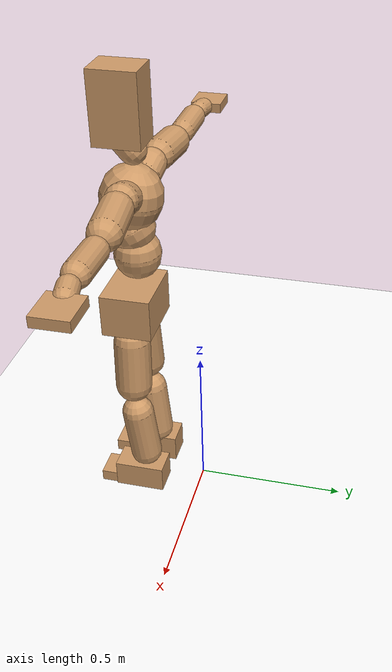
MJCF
<mujoco model="humanoid">
  <option integrator="implicitfast" />

  <visual>
    <global offwidth="1280" offheight="960" />
    <headlight active="1" ambient="0.34 0.34 0.34" diffuse="0.5 0.5 0.5" />
  </visual>

  <default>
    <joint damping="2" stiffness="2" armature="0.01" limited="true" solimplimit="0 .99 .01" />
    <geom condim="1" friction="0.7 0.005 0.0001" solimp=".99 .99 .003" solref="0.015 1" margin="0.001" rgba="0.8 0.6 .4 1" />
    <default class="smplcontact">
      <geom condim="3" friction="1. 0.005 0.0001" solref="0.015 1" solimp="0.98 0.98 0.001" priority="1" />
    </default>
    <default class="stiff_medium">
      <joint stiffness="10" />
    </default>
    <default class="stiff_medium_higher">
      <joint stiffness="50" />
    </default>
    <default class="stiff_high">
      <joint stiffness="100" />
    </default>
  </default>

  <asset>
    <texture type="skybox" builtin="gradient" rgb1="0.99 0.99 0.99" rgb2="0.608 0.828 0.892" width="100" />
    <texture builtin="flat" height="1278" mark="cross" markrgb="1 1 1" name="texgeom" random="0.01" rgb1="0.8 0.6 0.4" rgb2="0.8 0.6 0.4" type="cube" width="127" />
    <texture name="texplane" type="2d" builtin="checker" markrgb="1 1 1" rgb1="0.756 0.772 0.76" rgb2="0.6 0.6 0.6" width="100" height="100" />
    <material name="MatPlane" reflectance="0.5" texture="texplane" texrepeat="1 1" texuniform="true" />
    <material name="geom" texture="texgeom" texuniform="true" />
  </asset>

  <worldbody>
    <light name="tracking_light" pos="0 0 7" dir="0 0 -1" directional="true" cutoff="100" exponent="1" diffuse="1 1 1" specular="0.1 0.1 0.1" mode="trackcom" />
    <camera name="back" pos="0 3 2.4" xyaxes="-1 0 0 0 -1 2" mode="trackcom" />
    <camera name="side" pos="-3 0 2.4" xyaxes="0 -1 0 1 0 2" mode="trackcom" />
    <camera name="front_side" pos="-2.8 -2.8 0.8" xyaxes="0.5 -0.5 0 0.1 0.1 1" mode="trackcom" />
    <geom condim="3" name="floor" pos="0 0 0" rgba="1 1 1 1" size="100 100 .2" type="plane" material="MatPlane" />
    <body name="Pelvis" pos="-0.0018 -0.2233 0.714475" euler="90 0 0">
      <site name="Pelvis" size="0.01" />
      <freejoint name="Pelvis" />
      <geom type="box" pos="-0.0000 -0.0121 -0.0055" size="0.1069 0.0722 0.083" quat="1.0000 0.0000 0.0000 0.0000" density="3165.830099" name="Pelvis" />
      <body name="L_Hip" pos="0.052125 -0.06855 -0.0051">
        <joint name="L_Hip_x" type="hinge" pos="0 0 0" axis="1 0 0" stiffness="6.246094795918367" range="-160.0 22.92" class="stiff_medium" damping="8.291075045961078" armature="0.004891370984683405"/>
        <joint name="L_Hip_y" type="hinge" pos="0 0 0" axis="0 1 0" stiffness="6.283432346938776" range="-70.0 70.0" class="stiff_medium" damping="6.622206330553065" armature="0.006979245460609143"/>
        <joint name="L_Hip_z" type="hinge" pos="0 0 0" axis="0 0 1" stiffness="6.280236020408163" range="-28.65 90.0" class="stiff_medium" damping="5.540637852842338" armature="0.004888139190404853"/>
        <geom type="capsule" density="2040.816327" fromto="0.005175 -0.05625 -0.000675 0.02055 -0.22515 -0.0027" size="0.0615" name="L_Hip" />
        <body name="L_Knee" pos="0.025725 -0.2814 -0.003375">
          <joint name="L_Knee_x" type="hinge" pos="0 0 0" axis="1 0 0" range="-5.16 171.89" damping="4.62915338976834" armature="0.005182973512521492" stiffness="1.292034693877551"/>
          <joint name="L_Knee_y" type="hinge" pos="0 0 0" axis="0 1 0" range="-4.58 6.88" damping="5.469884734588186" armature="0.007381715461698131" stiffness="1.2666279591836735"/>
          <joint name="L_Knee_z" type="hinge" pos="0 0 0" axis="0 0 1" range="-6.88 4.58" damping="4.641672627872137" armature="0.005166231774225993" stiffness="1.3032422448979593"/>
          <geom type="capsule" density="1234.567901" fromto="-0.002025 -0.0597 -0.006525 -0.008175 -0.2388 -0.02625" size="0.0541" name="L_Knee" />
          <body name="L_Ankle" pos="-0.0102 -0.2985 -0.032775">
            <joint name="L_Ankle_x" type="hinge" pos="0 0 0" axis="1 0 0" range="-45.84 45.84" class="stiff_medium" damping="4.385268345779563" armature="0.007122436468331935" stiffness="7.5"/>
            <joint name="L_Ankle_y" type="hinge" pos="0 0 0" axis="0 1 0" range="-74.48 22.92" class="stiff_medium" damping="2.209050591087885" armature="0.007229488168867752" stiffness="7.5"/>
            <joint name="L_Ankle_z" type="hinge" pos="0 0 0" axis="0 0 1" range="-4.58 4.58" class="stiff_medium" damping="4.627293284407388" armature="0.00793031227404508" stiffness="7.5"/>
            <geom type="box" pos="0.017475 -0.017925 0.01815" size="0.0483 0.0464 0.085" quat="1.0000 0.0000 0.0000 0.0000" density="449.071558" name="L_Ankle" class="smplcontact" />
            <body name="L_Toe" pos="0.0198 -0.04185 0.089475">
              <joint name="L_Toe_x" type="hinge" pos="0 0 0" axis="1 0 0" range="-91.67 22.92" armature="0.00833667788750312" damping="1.5814560905225716" stiffness="1.5"/>
              <joint name="L_Toe_y" type="hinge" pos="0 0 0" axis="0 1 0" range="-4.58 4.58" armature="0.008828055290798229" damping="1.6273956455759209" stiffness="1.5"/>
              <joint name="L_Toe_z" type="hinge" pos="0 0 0" axis="0 0 1" range="-4.58 4.58" armature="0.009821593951991853" damping="1.7165308577469722" stiffness="1.5"/>
              <geom type="box" pos="-0.00225 0.004125 0.0186" size="0.0478 0.02 0.0496" quat="1.0000 0.0000 0.0000 0.0000" density="423.206892" name="L_Toe" class="smplcontact" />
            </body>
          </body>
        </body>
      </body>
      <body name="R_Hip" pos="-0.050775 -0.067875 -0.003225">
        <joint name="R_Hip_x" type="hinge" pos="0 0 0" axis="1 0 0" stiffness="6.246094795918367" range="-160.0 22.92" class="stiff_medium" damping="8.291075045961078" armature="0.004891370984683405"/>
        <joint name="R_Hip_y" type="hinge" pos="0 0 0" axis="0 1 0" stiffness="6.283432346938776" range="-70.0 70.0" class="stiff_medium" damping="6.622206330553065" armature="0.006979245460609143"/>
        <joint name="R_Hip_z" type="hinge" pos="0 0 0" axis="0 0 1" stiffness="6.280236020408163" range="-90.0 28.65" class="stiff_medium" damping="5.540637852842338" armature="0.004888139190404853"/>
        <geom type="capsule" density="2040.816327" fromto="-0.005775 -0.057375 -0.00135 -0.02295 -0.229575 -0.005325" size="0.0606" name="R_Hip" />
        <body name="R_Knee" pos="-0.028725 -0.28695 -0.006675">
          <joint name="R_Knee_x" type="hinge" pos="0 0 0" axis="1 0 0" range="-5.16 171.89" damping="4.62915338976834" armature="0.005182973512521492" stiffness="1.292034693877551"/>
          <joint name="R_Knee_y" type="hinge" pos="0 0 0" axis="0 1 0" range="-6.88 4.58" damping="5.469884734588186" armature="0.007381715461698131" stiffness="1.2666279591836735"/>
          <joint name="R_Knee_z" type="hinge" pos="0 0 0" axis="0 0 1" range="-4.58 6.88" damping="4.641672627872137" armature="0.005166231774225993" stiffness="1.3032422448979593"/>
          <geom type="capsule" density="1234.567901" fromto="0.0024 -0.059775 -0.006375 0.00945 -0.239025 -0.02535" size="0.0541" name="R_Knee" />
          <body name="R_Ankle" pos="0.01185 -0.2988 -0.031725">
            <joint name="R_Ankle_x" type="hinge" pos="0 0 0" axis="1 0 0" range="-45.84 45.84" class="stiff_medium" damping="4.385268345779563" armature="0.007122436468331935" stiffness="7.5"/>
            <joint name="R_Ankle_y" type="hinge" pos="0 0 0" axis="0 1 0" range="-22.92 74.48" class="stiff_medium" damping="2.209050591087885" armature="0.007229488168867752" stiffness="7.5"/>
            <joint name="R_Ankle_z" type="hinge" pos="0 0 0" axis="0 0 1" range="-4.58 4.58" class="stiff_medium" damping="4.627293284407388" armature="0.00793031227404508" stiffness="7.5"/>
            <geom type="box" pos="-0.0159 -0.01305 0.0192" size="0.0483 0.0478 0.0865" quat="1.0000 0.0000 0.0000 0.0000" density="434.700981" name="R_Ankle" class="smplcontact" />
            <body name="R_Toe" pos="-0.01905 -0.036075 0.092475">
              <joint name="R_Toe_x" type="hinge" pos="0 0 0" axis="1 0 0" range="-91.67 22.92" armature="0.00833667788750312" damping="1.5814560905225716" stiffness="1.5"/>
              <joint name="R_Toe_y" type="hinge" pos="0 0 0" axis="0 1 0" range="-4.58 4.58" armature="0.008828055290798229" damping="1.6273956455759209" stiffness="1.5"/>
              <joint name="R_Toe_z" type="hinge" pos="0 0 0" axis="0 0 1" range="-4.58 4.58" armature="0.009821593951991853" damping="1.7165308577469722" stiffness="1.5"/>
              <geom type="box" pos="0.00315 0.003375 0.017025" size="0.0479 0.0216 0.0493" quat="1.0000 0.0000 0.0000 0.0000" density="407.384095" name="R_Toe" class="smplcontact" />
            </body>
          </body>
        </body>
      </body>
      <body name="Torso" pos="-0.0025 0.109 -0.0267">
        <joint name="Torso_x" type="hinge" pos="0 0 0" axis="1 0 0" range="-25.78 57.3" class="stiff_medium" damping="14.37772512695071" armature="0.009518929822817204" stiffness="9.651831020408164"/>
        <joint name="Torso_y" type="hinge" pos="0 0 0" axis="0 1 0" range="-57.3 57.3" class="stiff_high" damping="17.047281200761137" armature="0.007489541703378379" stiffness="97.00519999999999"/>
        <joint name="Torso_z" type="hinge" pos="0 0 0" axis="0 0 1" range="-34.38 34.38" class="stiff_high" damping="18.565365135129568" armature="0.008825226346331873" stiffness="97.63851063829787"/>
        <geom type="capsule" density="2040.816327" fromto="0.0025 0.0608 0.0005 0.003 0.0743 0.0006" size="0.0769" name="Torso" />
        <body name="Spine" pos="0.0055 0.1352 0.0011">
          <joint name="Spine_x" type="hinge" pos="0 0 0" axis="1 0 0" stiffness="9.58583163265306" range="-25.78 57.3" class="stiff_medium" damping="14.269183612083733" armature="0.009440303089812757"/>
          <joint name="Spine_y" type="hinge" pos="0 0 0" axis="0 1 0" stiffness="9.576922244897958" range="-57.3 57.3" class="stiff_high" damping="6.767385718688831" armature="0.007471983870182018"/>
          <joint name="Spine_z" type="hinge" pos="0 0 0" axis="0 0 1" stiffness="19.01161469387755" range="-34.38 34.38" class="stiff_high" damping="10.689541255547073" armature="0.008347696197381859"/>
          <geom type="capsule" density="2040.816327" fromto="0.0007 0.0238 0.0114 0.0008 0.0291 0.014" size="0.0755" name="Spine" />
          <body name="Chest" pos="0.0015 0.0529 0.0254">
            <joint name="Chest_x" type="hinge" pos="0 0 0" axis="1 0 0" stiffness="9.387211020408163" range="-25.78 57.3" class="stiff_medium" damping="14.08799789886208" armature="0.009396788619791435"/>
            <joint name="Chest_y" type="hinge" pos="0 0 0" axis="0 1 0" stiffness="8.88616191489362" range="-57.3 57.3" class="stiff_high" damping="6.5161693940165115" armature="0.00746604382925993"/>
            <joint name="Chest_z" type="hinge" pos="0 0 0" axis="0 0 1" stiffness="18.95676244897959" range="-34.38 34.38" class="stiff_high" damping="10.53982249103985" armature="0.008138979020284567"/>
            <geom type="capsule" density="2040.816327" fromto="-0.0009 0.0682 -0.0173 -0.001 0.0833 -0.0212" size="0.1002" name="Chest" />
            <body name="Neck" pos="-0.0028 0.2139 -0.0429">
              <joint name="Neck_x" type="hinge" pos="0 0 0" axis="1 0 0" range="-28.65 57.3" class="stiff_medium_higher" damping="9.999999999999996" armature="0.009999999999999993" stiffness="50.0"/>
              <joint name="Neck_y" type="hinge" pos="0 0 0" axis="0 1 0" range="-40.11 40.11" class="stiff_medium_higher" damping="10.0" armature="0.01" stiffness="50.0"/>
              <joint name="Neck_z" type="hinge" pos="0 0 0" axis="0 0 1" range="-40.11 40.11" class="stiff_medium_higher" damping="9.999999999999986" armature="0.009999999999999974" stiffness="50.0"/>
              <geom type="capsule" density="1000" fromto="0.001 0.013 0.0103 0.0041 0.052 0.0411" size="0.0436" name="Neck" />
              <body name="Head" pos="0.0052 0.065 0.0513">
                <joint name="Head_x" type="hinge" pos="0 0 0" axis="1 0 0" range="-28.65 57.3" class="stiff_medium_higher" damping="1.9999999999999978" armature="0.009999999999999978" stiffness="50.0"/>
                <joint name="Head_y" type="hinge" pos="0 0 0" axis="0 1 0" range="-40.11 40.11" class="stiff_medium_higher" damping="2.0" armature="0.01" stiffness="50.0"/>
                <joint name="Head_z" type="hinge" pos="0 0 0" axis="0 0 1" range="-40.11 40.11" class="stiff_medium_higher" damping="1.9999999999999956" armature="0.009999999999999957" stiffness="50.0"/>
                <geom type="box" pos="-0.0042 0.0876 -0.0116" size="0.0606 0.1154 0.076" quat="1.0000 0.0000 0.0000 0.0000" density="1018.069894" name="Head" />
                <geom type="capsule" name="nose" size="0.02 0.01" pos="0 0.07 0.05" quat="1 0 0 0" mass="0" contype="0" conaffinity="0" />
              </body>
            </body>
            <body name="L_Thorax" pos="0.069935 0.108009 -0.0302637">
              <joint name="L_Thorax_x" type="hinge" pos="0 0 0" axis="1 0 0" range="-10.89 4.58" class="stiff_medium_higher" damping="16.503674429364345" armature="0.00823728971288075" stiffness="41.33205204081632"/>
              <joint name="L_Thorax_y" type="hinge" pos="0 0 0" axis="0 1 0" range="-28.65 17.19" class="stiff_medium_higher" damping="15.615380485833974" armature="0.007397181758642919" stiffness="41.2049"/>
              <joint name="L_Thorax_z" type="hinge" pos="0 0 0" axis="0 0 1" range="-31.51 40.11" class="stiff_medium_higher" damping="15.61484528881393" armature="0.0073964225804993" stiffness="41.206304591836734"/>
              <geom type="capsule" density="1000" fromto="0.0161525 0.00541375 -0.0015975 0.06461 0.021655 -0.00630125" size="0.0521" name="L_Thorax" />
              <body name="L_Shoulder" pos="0.0807625 0.0270687 -0.00789875">
                <joint name="L_Shoulder_x" type="hinge" pos="0 0 0" axis="1 0 0" range="-97.4 97.4" class="stiff_medium" damping="5.053222703168467" armature="0.008561219507331212" stiffness="8.28511887755102"/>
                <joint name="L_Shoulder_y" type="hinge" pos="0 0 0" axis="0 1 0" range="-108.86 80.21" class="stiff_medium" damping="4.696052433643627" armature="0.0074248281922430735" stiffness="8.25043724489796"/>
                <joint name="L_Shoulder_z" type="hinge" pos="0 0 0" axis="0 0 1" range="-97.4 85.94" class="stiff_medium" damping="4.696316861704075" armature="0.0074238227073570905" stiffness="8.252483979591837"/>
                <geom type="capsule" density="1000" fromto="0.0460612 -0.0023075 -0.00488125 0.184334 -0.0090525 -0.019525" size="0.0517" name="L_Shoulder" />
                <body name="L_Elbow" pos="0.230395 -0.01136 -0.0244062">
                  <joint name="L_Elbow_x" type="hinge" pos="0 0 0" axis="1 0 0" range="-17.19 4.58" damping="4.357905906305418" armature="0.00908959576069993" stiffness="1.6714797346938777"/>
                  <joint name="L_Elbow_y" type="hinge" pos="0 0 0" axis="0 1 0" range="-180.0 17.19" damping="3.9739600722787505" armature="0.007559999182253774" stiffness="1.6711492448979592"/>
                  <joint name="L_Elbow_z" type="hinge" pos="0 0 0" axis="0 0 1" range="-100.84 4.58" damping="3.9732408069423326" armature="0.007554721526974213" stiffness="1.671711387755102"/>
                  <geom type="capsule" density="1000" fromto="0.0441975 0.0015975 -0.0001775 0.176967 0.00639 -0.00079875" size="0.0405" name="L_Elbow" />
                  <body name="L_Wrist" pos="0.221165 0.0079875 -0.001065">
                    <joint name="L_Wrist_x" type="hinge" pos="0 0 0" axis="1 0 0" range="-180.0 22.92" armature="0.009268388983616014" damping="1.795344155935765" stiffness="1.738846224489796"/>
                    <joint name="L_Wrist_y" type="hinge" pos="0 0 0" axis="0 1 0" range="-17.19 17.19" armature="0.008039907338787632" damping="1.669581207311124" stiffness="1.7335407551020405"/>
                    <joint name="L_Wrist_z" type="hinge" pos="0 0 0" axis="0 0 1" range="-22.92 22.92" armature="0.00797078323233517" damping="1.6634142634626043" stiffness="1.7356807551020408"/>
                    <geom type="capsule" density="1000" fromto="0.01491 -0.00142 -0.0026625 0.05964 -0.00576875 -0.01065" size="0.0318" name="L_Wrist" class="smplcontact" />
                    <body name="L_Hand" pos="0.07455 -0.0072775 -0.0132237">
                      <joint name="L_Hand_x" type="hinge" pos="0 0 0" axis="1 0 0" range="-17.19 17.19" armature="0.009907489981019538" damping="1.875408510986378" stiffness="1.7749990612244897"/>
                      <joint name="L_Hand_y" type="hinge" pos="0 0 0" axis="0 1 0" range="-51.57 51.57" armature="0.008881214164334976" damping="1.7756208279347794" stiffness="1.7749990408163265"/>
                      <joint name="L_Hand_z" type="hinge" pos="0 0 0" axis="0 0 1" range="-91.67 91.67" armature="0.008607646402111247" damping="1.7480597104275966" stiffness="1.7749990000000002"/>
                      <geom type="box" pos="0.0437537 0.0008875 -0.0051475" size="0.0585 0.0158 0.0538" quat="1.0000 0.0000 0.0000 0.0000" density="400.552564" name="L_Hand" class="smplcontact" />
                    </body>
                  </body>
                </body>
              </body>
            </body>
            <body name="R_Thorax" pos="-0.0725975 0.105435 -0.0342575">
              <joint name="R_Thorax_x" type="hinge" pos="0 0 0" axis="1 0 0" range="-10.89 4.58" class="stiff_medium_higher" damping="16.503674429364345" armature="0.00823728971288075" stiffness="41.33205204081632"/>
              <joint name="R_Thorax_y" type="hinge" pos="0 0 0" axis="0 1 0" range="-17.19 28.65" class="stiff_medium_higher" damping="15.615380485833974" armature="0.007397181758642919" stiffness="41.2049"/>
              <joint name="R_Thorax_z" type="hinge" pos="0 0 0" axis="0 0 1" range="-40.11 31.51" class="stiff_medium_higher" damping="15.61484528881393" armature="0.0073964225804993" stiffness="41.206304591836734"/>
              <geom type="capsule" density="1000" fromto="-0.01704 0.00576875 -0.0015975 -0.06816 0.023075 -0.00647875" size="0.0511" name="R_Thorax" />
              <body name="R_Shoulder" pos="-0.0852 0.0289325 -0.00807625">
                <joint name="R_Shoulder_x" type="hinge" pos="0 0 0" axis="1 0 0" range="-97.4 97.4" class="stiff_medium" damping="5.053222703168467" armature="0.008561219507331212" stiffness="8.28511887755102"/>
                <joint name="R_Shoulder_y" type="hinge" pos="0 0 0" axis="0 1 0" range="-80.21 108.86" class="stiff_medium" damping="4.696052433643627" armature="0.0074248281922430735" stiffness="8.25043724489796"/>
                <joint name="R_Shoulder_z" type="hinge" pos="0 0 0" axis="0 0 1" range="-85.94 97.4" class="stiff_medium" damping="4.696316861704075" armature="0.0074238227073570905" stiffness="8.252483979591837"/>
                <geom type="capsule" density="1000" fromto="-0.0449963 -0.00239625 -0.00381625 -0.180163 -0.00949625 -0.0151763" size="0.0531" name="R_Shoulder" />
                <body name="R_Elbow" pos="-0.225159 -0.0118037 -0.0189925">
                  <joint name="R_Elbow_x" type="hinge" pos="0 0 0" axis="1 0 0" range="-17.19 4.58" damping="4.357905906305418" armature="0.00908959576069993" stiffness="1.6714797346938777"/>
                  <joint name="R_Elbow_y" type="hinge" pos="0 0 0" axis="0 1 0" range="-17.19 180.0" damping="3.9739600722787505" armature="0.007559999182253774" stiffness="1.6711492448979592"/>
                  <joint name="R_Elbow_z" type="hinge" pos="0 0 0" axis="0 0 1" range="-4.58 100.84" damping="3.9732408069423326" armature="0.007554721526974213" stiffness="1.671711387755102"/>
                  <geom type="capsule" density="1000" fromto="-0.0453512 0.00142 -0.00097625 -0.181227 0.0055025 -0.003905" size="0.0408" name="R_Elbow" />
                  <body name="R_Wrist" pos="-0.226579 0.0069225 -0.00497">
                    <joint name="R_Wrist_x" type="hinge" pos="0 0 0" axis="1 0 0" range="-180.0 22.92" armature="0.009268388983616014" damping="1.795344155935765" stiffness="1.738846224489796"/>
                    <joint name="R_Wrist_y" type="hinge" pos="0 0 0" axis="0 1 0" range="-17.19 17.19" armature="0.008039907338787632" damping="1.669581207311124" stiffness="1.7335407551020405"/>
                    <joint name="R_Wrist_z" type="hinge" pos="0 0 0" axis="0 0 1" range="-22.92 22.92" armature="0.00797078323233517" damping="1.6634142634626043" stiffness="1.7356807551020408"/>
                    <geom type="capsule" density="1000" fromto="-0.0149987 -0.001065 -0.00186375 -0.0600837 -0.00434875 -0.00736625" size="0.0326" name="R_Wrist" class="smplcontact" />
                    <body name="R_Hand" pos="-0.0750825 -0.00541375 -0.00914125">
                      <joint name="R_Hand_x" type="hinge" pos="0 0 0" axis="1 0 0" range="-17.19 17.19" armature="0.009907489981019538" damping="1.875408510986378" stiffness="1.7749990612244897"/>
                      <joint name="R_Hand_y" type="hinge" pos="0 0 0" axis="0 1 0" range="-51.57 51.57" armature="0.008881214164334976" damping="1.7756208279347794" stiffness="1.7749990408163265"/>
                      <joint name="R_Hand_z" type="hinge" pos="0 0 0" axis="0 0 1" range="-91.67 91.67" armature="0.008607646402111247" damping="1.7480597104275966" stiffness="1.7749990000000002"/>
                      <geom type="box" pos="-0.0410025 -0.00079875 -0.00701125" size="0.0569 0.0164 0.0546" quat="1.0000 0.0000 0.0000 0.0000" density="403.679611" name="R_Hand" class="smplcontact" />
                    </body>
                  </body>
                </body>
              </body>
            </body>
          </body>
        </body>
      </body>
    </body>
  </worldbody>
  <actuator>
    <general name="L_Hip_x" joint="L_Hip_x" biastype="affine" gainprm="179.46908180691764" biasprm="-134.4938865848036 -112.42970632653059 -1.1054766727948104" ctrllimited="true" ctrlrange="-1 1" forcerange="-224.85941265306118 224.85941265306118" />
    <general name="L_Hip_y" joint="L_Hip_y" biastype="affine" gainprm="138.1798943032993" biasprm="0.0 -113.10178224489796 -1.324441266110613" ctrllimited="true" ctrlrange="-1 1" forcerange="-226.20356448979592 226.20356448979592" />
    <general name="L_Hip_z" joint="L_Hip_z" biastype="affine" gainprm="117.04788889139031" biasprm="60.52160120932823 -113.04424836734694 -1.1081275705684677" ctrllimited="true" ctrlrange="-1 1" forcerange="-226.08849673469388 226.08849673469388" />
    <general name="L_Knee_x" joint="L_Knee_x" biastype="affine" gainprm="179.66355466802756" biasprm="169.1912141756579 -116.2831224489796 -1.157288347442085" ctrllimited="true" ctrlrange="-1 1" forcerange="-232.5662448979592 232.5662448979592" />
    <general name="L_Knee_y" joint="L_Knee_y" biastype="affine" gainprm="11.400491346869197" biasprm="2.2880567275566452 -113.99651632653062 -1.3674711836470466" ctrllimited="true" ctrlrange="-1 1" forcerange="-227.99303265306125 227.99303265306125" />
    <general name="L_Knee_z" joint="L_Knee_z" biastype="affine" gainprm="11.730044191831292" biasprm="-2.3541973508910967 -117.29180204081634 -1.1604181569680343" ctrllimited="true" ctrlrange="-1 1" forcerange="-234.58360408163267 234.58360408163267" />
    <general name="L_Ankle_x" joint="L_Ankle_x" biastype="affine" gainprm="54.00397771520855" biasprm="0.0 -67.5 -1.4617561152598544" ctrllimited="true" ctrlrange="-1 1" forcerange="-135.0 135.0" />
    <general name="L_Ankle_y" joint="L_Ankle_y" biastype="affine" gainprm="57.37333583618361" biasprm="-30.371346978579332 -67.5 -1.4727003940585899" ctrllimited="true" ctrlrange="-1 1" forcerange="-135.0 135.0" />
    <general name="L_Ankle_z" joint="L_Ankle_z" biastype="affine" gainprm="5.395685382540469" biasprm="0.0 -67.5 -1.5424310948024629" ctrllimited="true" ctrlrange="-1 1" forcerange="-135.0 135.0" />
    <general name="L_Toe_x" joint="L_Toe_x" biastype="affine" gainprm="53.999265326228155" biasprm="-32.39767424014474 -54.0 -0.6325824362090287" ctrllimited="true" ctrlrange="-1 1" forcerange="-108.0 108.0" />
    <general name="L_Toe_y" joint="L_Toe_y" biastype="affine" gainprm="4.3165483060323755" biasprm="0.0 -54.0 -0.6509582582303683" ctrllimited="true" ctrlrange="-1 1" forcerange="-108.0 108.0" />
    <general name="L_Toe_z" joint="L_Toe_z" biastype="affine" gainprm="4.3165483060323755" biasprm="0.0 -54.0 -0.6866123430987889" ctrllimited="true" ctrlrange="-1 1" forcerange="-108.0 108.0" />
    <general name="R_Hip_x" joint="R_Hip_x" biastype="affine" gainprm="179.46908180691764" biasprm="-134.4938865848036 -112.42970632653059 -1.1054766727948104" ctrllimited="true" ctrlrange="-1 1" forcerange="-224.85941265306118 224.85941265306118" />
    <general name="R_Hip_y" joint="R_Hip_y" biastype="affine" gainprm="138.1798943032993" biasprm="0.0 -113.10178224489796 -1.324441266110613" ctrllimited="true" ctrlrange="-1 1" forcerange="-226.20356448979592 226.20356448979592" />
    <general name="R_Hip_z" joint="R_Hip_z" biastype="affine" gainprm="117.04788889139031" biasprm="-60.52160120932823 -113.04424836734694 -1.1081275705684677" ctrllimited="true" ctrlrange="-1 1" forcerange="-226.08849673469388 226.08849673469388" />
    <general name="R_Knee_x" joint="R_Knee_x" biastype="affine" gainprm="179.66355466802756" biasprm="169.1912141756579 -116.2831224489796 -1.157288347442085" ctrllimited="true" ctrlrange="-1 1" forcerange="-232.5662448979592 232.5662448979592" />
    <general name="R_Knee_y" joint="R_Knee_y" biastype="affine" gainprm="11.400491346869197" biasprm="-2.2880567275566452 -113.99651632653062 -1.3674711836470466" ctrllimited="true" ctrlrange="-1 1" forcerange="-227.99303265306125 227.99303265306125" />
    <general name="R_Knee_z" joint="R_Knee_z" biastype="affine" gainprm="11.730044191831292" biasprm="2.3541973508910967 -117.29180204081634 -1.1604181569680343" ctrllimited="true" ctrlrange="-1 1" forcerange="-234.58360408163267 234.58360408163267" />
    <general name="R_Ankle_x" joint="R_Ankle_x" biastype="affine" gainprm="54.00397771520855" biasprm="0.0 -67.5 -1.4617561152598544" ctrllimited="true" ctrlrange="-1 1" forcerange="-135.0 135.0" />
    <general name="R_Ankle_y" joint="R_Ankle_y" biastype="affine" gainprm="57.37333583618361" biasprm="30.371346978579332 -67.5 -1.4727003940585899" ctrllimited="true" ctrlrange="-1 1" forcerange="-135.0 135.0" />
    <general name="R_Ankle_z" joint="R_Ankle_z" biastype="affine" gainprm="5.395685382540469" biasprm="0.0 -67.5 -1.5424310948024629" ctrllimited="true" ctrlrange="-1 1" forcerange="-135.0 135.0" />
    <general name="R_Toe_x" joint="R_Toe_x" biastype="affine" gainprm="53.999265326228155" biasprm="-32.39767424014474 -54.0 -0.6325824362090287" ctrllimited="true" ctrlrange="-1 1" forcerange="-108.0 108.0" />
    <general name="R_Toe_y" joint="R_Toe_y" biastype="affine" gainprm="4.3165483060323755" biasprm="0.0 -54.0 -0.6509582582303683" ctrllimited="true" ctrlrange="-1 1" forcerange="-108.0 108.0" />
    <general name="R_Toe_z" joint="R_Toe_z" biastype="affine" gainprm="4.3165483060323755" biasprm="0.0 -54.0 -0.6866123430987889" ctrllimited="true" ctrlrange="-1 1" forcerange="-108.0 108.0" />
    <general name="Torso_x" joint="Torso_x" biastype="affine" gainprm="167.94412321258363" biasprm="63.71688449278569 -231.64394448979593 -3.8340600338535227" ctrllimited="true" ctrlrange="-1 1" forcerange="-347.4659167346939 347.4659167346939" />
    <general name="Torso_y" joint="Torso_y" biastype="affine" gainprm="232.82962929152654" biasprm="0.0 -232.81248 -3.4094562401522275" ctrllimited="true" ctrlrange="-1 1" forcerange="-349.21871999999996 349.21871999999996" />
    <general name="Torso_z" joint="Torso_z" biastype="affine" gainprm="140.60981207084777" biasprm="0.0 -234.33242553191488 -3.7130730270259136" ctrllimited="true" ctrlrange="-1 1" forcerange="-351.49863829787233 351.49863829787233" />
    <general name="Spine_x" joint="Spine_x" biastype="affine" gainprm="166.79571838808337" biasprm="63.28118733259974 -230.05995918367344 -3.8051156298889954" ctrllimited="true" ctrlrange="-1 1" forcerange="-345.0899387755102 345.0899387755102" />
    <general name="Spine_y" joint="Spine_y" biastype="affine" gainprm="229.8630646638908" biasprm="0.0 -229.846133877551 -3.3836928593444155" ctrllimited="true" ctrlrange="-1 1" forcerange="-344.76920081632653 344.76920081632653" />
    <general name="Spine_z" joint="Spine_z" biastype="affine" gainprm="136.89370883443928" biasprm="0.0 -228.1393763265306 -3.563180418515691" ctrllimited="true" ctrlrange="-1 1" forcerange="-342.2090644897959 342.2090644897959" />
    <general name="Chest_x" joint="Chest_x" biastype="affine" gainprm="163.33967315636679" biasprm="61.969986734336544 -225.29306448979594 -3.7567994396965547" ctrllimited="true" ctrlrange="-1 1" forcerange="-337.9395967346939 337.9395967346939" />
    <general name="Chest_y" joint="Chest_y" biastype="affine" gainprm="213.2835955669555" biasprm="0.0 -213.26788595744688 -3.2580846970082558" ctrllimited="true" ctrlrange="-1 1" forcerange="-319.9018289361703 319.9018289361703" />
    <general name="Chest_z" joint="Chest_z" biastype="affine" gainprm="136.49874357962614" biasprm="0.0 -227.48114938775507 -3.51327416367995" ctrllimited="true" ctrlrange="-1 1" forcerange="-341.2217240816326 341.2217240816326" />
    <general name="Neck_x" joint="Neck_x" biastype="affine" gainprm="27.00198885760427" biasprm="9.000662952534757 -36.0 -0.7999999999999997" ctrllimited="true" ctrlrange="-1 1" forcerange="-72.0 72.0" />
    <general name="Neck_y" joint="Neck_y" biastype="affine" gainprm="25.20185626709732" biasprm="0.0 -36.0 -0.8" ctrllimited="true" ctrlrange="-1 1" forcerange="-72.0 72.0" />
    <general name="Neck_z" joint="Neck_z" biastype="affine" gainprm="25.20185626709732" biasprm="0.0 -36.0 -0.7999999999999989" ctrllimited="true" ctrlrange="-1 1" forcerange="-72.0 72.0" />
    <general name="Head_x" joint="Head_x" biastype="affine" gainprm="18.001325905069514" biasprm="6.000441968356505 -24.0 -0.7999999999999992" ctrllimited="true" ctrlrange="-1 1" forcerange="-48.0 48.0" />
    <general name="Head_y" joint="Head_y" biastype="affine" gainprm="16.801237511398213" biasprm="0.0 -24.0 -0.8" ctrllimited="true" ctrlrange="-1 1" forcerange="-48.0 48.0" />
    <general name="Head_z" joint="Head_z" biastype="affine" gainprm="16.801237511398213" biasprm="0.0 -24.0 -0.7999999999999983" ctrllimited="true" ctrlrange="-1 1" forcerange="-48.0 48.0" />
    <general name="L_Thorax_x" joint="L_Thorax_x" biastype="affine" gainprm="13.391705647542844" biasprm="-5.462292348803839 -99.19692489795918 -1.3202939543491476" ctrllimited="true" ctrlrange="-1 1" forcerange="-198.39384979591836 198.39384979591836" />
    <general name="L_Thorax_y" joint="L_Thorax_y" biastype="affine" gainprm="39.55961780190927" biasprm="-9.889904450477317 -98.89176 -1.249230438866718" ctrllimited="true" ctrlrange="-1 1" forcerange="-197.78352 197.78352" />
    <general name="L_Thorax_z" joint="L_Thorax_z" biastype="affine" gainprm="61.80969474430838" biasprm="7.4219962971383975 -98.89513102040816 -1.2491876231051144" ctrllimited="true" ctrlrange="-1 1" forcerange="-197.79026204081632 197.79026204081632" />
    <general name="L_Shoulder_x" joint="L_Shoulder_x" biastype="affine" gainprm="67.60460910996468" biasprm="0.0 -39.768570612244886 -1.3475260541782579" ctrllimited="true" ctrlrange="-1 1" forcerange="-79.53714122448977 79.53714122448977" />
    <general name="L_Shoulder_y" joint="L_Shoulder_y" biastype="affine" gainprm="65.34136439993874" biasprm="-9.901253980315465 -39.6020987755102 -1.2522806489716338" ctrllimited="true" ctrlrange="-1 1" forcerange="-79.2041975510204 79.2041975510204" />
    <general name="L_Shoulder_z" joint="L_Shoulder_z" biastype="affine" gainprm="63.376831969533896" biasprm="-3.9614840971466134 -39.61192310204081 -1.2523511631210866" ctrllimited="true" ctrlrange="-1 1" forcerange="-79.22384620408162 79.22384620408162" />
    <general name="L_Elbow_x" joint="L_Elbow_x" biastype="affine" gainprm="11.43166310683652" biasprm="-6.621647761929654 -60.17327044897959 -0.6972649450088668" ctrllimited="true" ctrlrange="-1 1" forcerange="-120.34654089795919 120.34654089795919" />
    <general name="L_Elbow_y" joint="L_Elbow_y" biastype="affine" gainprm="103.52613409284974" biasprm="-85.47639277679836 -60.16137281632653 -0.6358336115646002" ctrllimited="true" ctrlrange="-1 1" forcerange="-120.32274563265307 120.32274563265307" />
    <general name="L_Elbow_z" joint="L_Elbow_z" biastype="affine" gainprm="55.364857375302314" biasprm="-50.55417540264278 -60.181609959183675 -0.6357185291107732" ctrllimited="true" ctrlrange="-1 1" forcerange="-120.36321991836735 120.36321991836735" />
    <general name="L_Wrist_x" joint="L_Wrist_x" biastype="affine" gainprm="18.475008746127838" biasprm="-14.301470401349109 -10.433077346938775 -0.7181376623743061" ctrllimited="true" ctrlrange="-1 1" forcerange="-20.86615469387755 20.86615469387755" />
    <general name="L_Wrist_y" joint="L_Wrist_y" biastype="affine" gainprm="3.120603210231214" biasprm="0.0 -10.401244530612242 -0.6678324829244496" ctrllimited="true" ctrlrange="-1 1" forcerange="-20.802489061224485 20.802489061224485" />
    <general name="L_Wrist_z" joint="L_Wrist_z" biastype="affine" gainprm="4.165940658633199" biasprm="0.0 -10.414084530612245 -0.6653657053850418" ctrllimited="true" ctrlrange="-1 1" forcerange="-20.82816906122449 20.82816906122449" />
    <general name="L_Hand_x" joint="L_Hand_x" biastype="affine" gainprm="3.1952336582294483" biasprm="0.0 -10.649994367346938 -0.7501634043945513" ctrllimited="true" ctrlrange="-1 1" forcerange="-21.299988734693876 21.299988734693876" />
    <general name="L_Hand_y" joint="L_Hand_y" biastype="affine" gainprm="9.585700864476143" biasprm="0.0 -10.64999424489796 -0.7102483311739118" ctrllimited="true" ctrlrange="-1 1" forcerange="-21.29998848979592 21.29998848979592" />
    <general name="L_Hand_z" joint="L_Hand_z" biastype="affine" gainprm="17.03938681481915" biasprm="0.0 -10.649994000000001 -0.6992238841710386" ctrllimited="true" ctrlrange="-1 1" forcerange="-21.299988000000003 21.299988000000003" />
    <general name="R_Thorax_x" joint="R_Thorax_x" biastype="affine" gainprm="13.391705647542844" biasprm="-5.462292348803839 -99.19692489795918 -1.3202939543491476" ctrllimited="true" ctrlrange="-1 1" forcerange="-198.39384979591836 198.39384979591836" />
    <general name="R_Thorax_y" joint="R_Thorax_y" biastype="affine" gainprm="39.55961780190927" biasprm="9.889904450477312 -98.89176 -1.249230438866718" ctrllimited="true" ctrlrange="-1 1" forcerange="-197.78352 197.78352" />
    <general name="R_Thorax_z" joint="R_Thorax_z" biastype="affine" gainprm="61.80969474430838" biasprm="-7.4219962971383975 -98.89513102040816 -1.2491876231051144" ctrllimited="true" ctrlrange="-1 1" forcerange="-197.79026204081632 197.79026204081632" />
    <general name="R_Shoulder_x" joint="R_Shoulder_x" biastype="affine" gainprm="67.60460910996468" biasprm="0.0 -39.768570612244886 -1.3475260541782579" ctrllimited="true" ctrlrange="-1 1" forcerange="-79.53714122448977 79.53714122448977" />
    <general name="R_Shoulder_y" joint="R_Shoulder_y" biastype="affine" gainprm="65.34136439993874" biasprm="9.901253980315465 -39.6020987755102 -1.2522806489716338" ctrllimited="true" ctrlrange="-1 1" forcerange="-79.2041975510204 79.2041975510204" />
    <general name="R_Shoulder_z" joint="R_Shoulder_z" biastype="affine" gainprm="63.376831969533896" biasprm="3.9614840971466045 -39.61192310204081 -1.2523511631210866" ctrllimited="true" ctrlrange="-1 1" forcerange="-79.22384620408162 79.22384620408162" />
    <general name="R_Elbow_x" joint="R_Elbow_x" biastype="affine" gainprm="11.43166310683652" biasprm="-6.621647761929654 -60.17327044897959 -0.6972649450088668" ctrllimited="true" ctrlrange="-1 1" forcerange="-120.34654089795919 120.34654089795919" />
    <general name="R_Elbow_y" joint="R_Elbow_y" biastype="affine" gainprm="103.52613409284974" biasprm="85.47639277679836 -60.16137281632653 -0.6358336115646002" ctrllimited="true" ctrlrange="-1 1" forcerange="-120.32274563265307 120.32274563265307" />
    <general name="R_Elbow_z" joint="R_Elbow_z" biastype="affine" gainprm="55.364857375302314" biasprm="50.55417540264277 -60.181609959183675 -0.6357185291107732" ctrllimited="true" ctrlrange="-1 1" forcerange="-120.36321991836735 120.36321991836735" />
    <general name="R_Wrist_x" joint="R_Wrist_x" biastype="affine" gainprm="18.475008746127838" biasprm="-14.301470401349109 -10.433077346938775 -0.7181376623743061" ctrllimited="true" ctrlrange="-1 1" forcerange="-20.86615469387755 20.86615469387755" />
    <general name="R_Wrist_y" joint="R_Wrist_y" biastype="affine" gainprm="3.120603210231214" biasprm="0.0 -10.401244530612242 -0.6678324829244496" ctrllimited="true" ctrlrange="-1 1" forcerange="-20.802489061224485 20.802489061224485" />
    <general name="R_Wrist_z" joint="R_Wrist_z" biastype="affine" gainprm="4.165940658633199" biasprm="0.0 -10.414084530612245 -0.6653657053850418" ctrllimited="true" ctrlrange="-1 1" forcerange="-20.82816906122449 20.82816906122449" />
    <general name="R_Hand_x" joint="R_Hand_x" biastype="affine" gainprm="3.1952336582294483" biasprm="0.0 -10.649994367346938 -0.7501634043945513" ctrllimited="true" ctrlrange="-1 1" forcerange="-21.299988734693876 21.299988734693876" />
    <general name="R_Hand_y" joint="R_Hand_y" biastype="affine" gainprm="9.585700864476143" biasprm="0.0 -10.64999424489796 -0.7102483311739118" ctrllimited="true" ctrlrange="-1 1" forcerange="-21.29998848979592 21.29998848979592" />
    <general name="R_Hand_z" joint="R_Hand_z" biastype="affine" gainprm="17.03938681481915" biasprm="0.0 -10.649994000000001 -0.6992238841710386" ctrllimited="true" ctrlrange="-1 1" forcerange="-21.299988000000003 21.299988000000003" />
  </actuator>
  <contact>
    <exclude body1="Torso" body2="Chest" />
    <exclude body1="Head" body2="Chest" />
    <exclude body1="R_Knee" body2="R_Toe" />
    <exclude body1="R_Knee" body2="L_Ankle" />
    <exclude body1="R_Knee" body2="L_Toe" />
    <exclude body1="L_Knee" body2="L_Toe" />
    <exclude body1="L_Knee" body2="R_Ankle" />
    <exclude body1="L_Knee" body2="R_Toe" />
    <exclude body1="L_Shoulder" body2="Chest" />
    <exclude body1="R_Shoulder" body2="Chest" />
  </contact>
  <sensor>
    <framelinvel name="sensor_Pelvis_framelinvel" objtype="xbody" objname="Pelvis" />
    <framelinvel name="sensor_L_Hip_framelinvel" objtype="xbody" objname="L_Hip" />
    <framelinvel name="sensor_L_Knee_framelinvel" objtype="xbody" objname="L_Knee" />
    <framelinvel name="sensor_L_Ankle_framelinvel" objtype="xbody" objname="L_Ankle" />
    <framelinvel name="sensor_L_Toe_framelinvel" objtype="xbody" objname="L_Toe" />
    <framelinvel name="sensor_R_Hip_framelinvel" objtype="xbody" objname="R_Hip" />
    <framelinvel name="sensor_R_Knee_framelinvel" objtype="xbody" objname="R_Knee" />
    <framelinvel name="sensor_R_Ankle_framelinvel" objtype="xbody" objname="R_Ankle" />
    <framelinvel name="sensor_R_Toe_framelinvel" objtype="xbody" objname="R_Toe" />
    <framelinvel name="sensor_Torso_framelinvel" objtype="xbody" objname="Torso" />
    <framelinvel name="sensor_Spine_framelinvel" objtype="xbody" objname="Spine" />
    <framelinvel name="sensor_Chest_framelinvel" objtype="xbody" objname="Chest" />
    <framelinvel name="sensor_Neck_framelinvel" objtype="xbody" objname="Neck" />
    <framelinvel name="sensor_Head_framelinvel" objtype="xbody" objname="Head" />
    <framelinvel name="sensor_L_Thorax_framelinvel" objtype="xbody" objname="L_Thorax" />
    <framelinvel name="sensor_L_Shoulder_framelinvel" objtype="xbody" objname="L_Shoulder" />
    <framelinvel name="sensor_L_Elbow_framelinvel" objtype="xbody" objname="L_Elbow" />
    <framelinvel name="sensor_L_Wrist_framelinvel" objtype="xbody" objname="L_Wrist" />
    <framelinvel name="sensor_L_Hand_framelinvel" objtype="xbody" objname="L_Hand" />
    <framelinvel name="sensor_R_Thorax_framelinvel" objtype="xbody" objname="R_Thorax" />
    <framelinvel name="sensor_R_Shoulder_framelinvel" objtype="xbody" objname="R_Shoulder" />
    <framelinvel name="sensor_R_Elbow_framelinvel" objtype="xbody" objname="R_Elbow" />
    <framelinvel name="sensor_R_Wrist_framelinvel" objtype="xbody" objname="R_Wrist" />
    <framelinvel name="sensor_R_Hand_framelinvel" objtype="xbody" objname="R_Hand" />
    <frameangvel name="sensor_Pelvis_frameangvel" objtype="xbody" objname="Pelvis" />
    <frameangvel name="sensor_L_Hip_frameangvel" objtype="xbody" objname="L_Hip" />
    <frameangvel name="sensor_L_Knee_frameangvel" objtype="xbody" objname="L_Knee" />
    <frameangvel name="sensor_L_Ankle_frameangvel" objtype="xbody" objname="L_Ankle" />
    <frameangvel name="sensor_L_Toe_frameangvel" objtype="xbody" objname="L_Toe" />
    <frameangvel name="sensor_R_Hip_frameangvel" objtype="xbody" objname="R_Hip" />
    <frameangvel name="sensor_R_Knee_frameangvel" objtype="xbody" objname="R_Knee" />
    <frameangvel name="sensor_R_Ankle_frameangvel" objtype="xbody" objname="R_Ankle" />
    <frameangvel name="sensor_R_Toe_frameangvel" objtype="xbody" objname="R_Toe" />
    <frameangvel name="sensor_Torso_frameangvel" objtype="xbody" objname="Torso" />
    <frameangvel name="sensor_Spine_frameangvel" objtype="xbody" objname="Spine" />
    <frameangvel name="sensor_Chest_frameangvel" objtype="xbody" objname="Chest" />
    <frameangvel name="sensor_Neck_frameangvel" objtype="xbody" objname="Neck" />
    <frameangvel name="sensor_Head_frameangvel" objtype="xbody" objname="Head" />
    <frameangvel name="sensor_L_Thorax_frameangvel" objtype="xbody" objname="L_Thorax" />
    <frameangvel name="sensor_L_Shoulder_frameangvel" objtype="xbody" objname="L_Shoulder" />
    <frameangvel name="sensor_L_Elbow_frameangvel" objtype="xbody" objname="L_Elbow" />
    <frameangvel name="sensor_L_Wrist_frameangvel" objtype="xbody" objname="L_Wrist" />
    <frameangvel name="sensor_L_Hand_frameangvel" objtype="xbody" objname="L_Hand" />
    <frameangvel name="sensor_R_Thorax_frameangvel" objtype="xbody" objname="R_Thorax" />
    <frameangvel name="sensor_R_Shoulder_frameangvel" objtype="xbody" objname="R_Shoulder" />
    <frameangvel name="sensor_R_Elbow_frameangvel" objtype="xbody" objname="R_Elbow" />
    <frameangvel name="sensor_R_Wrist_frameangvel" objtype="xbody" objname="R_Wrist" />
    <frameangvel name="sensor_R_Hand_frameangvel" objtype="xbody" objname="R_Hand" />
    <subtreelinvel name="Chest_subtreelinvel" body="Chest" />
    <gyro name="Pelvis_gyro" site="Pelvis" />
  </sensor>
</mujoco>
